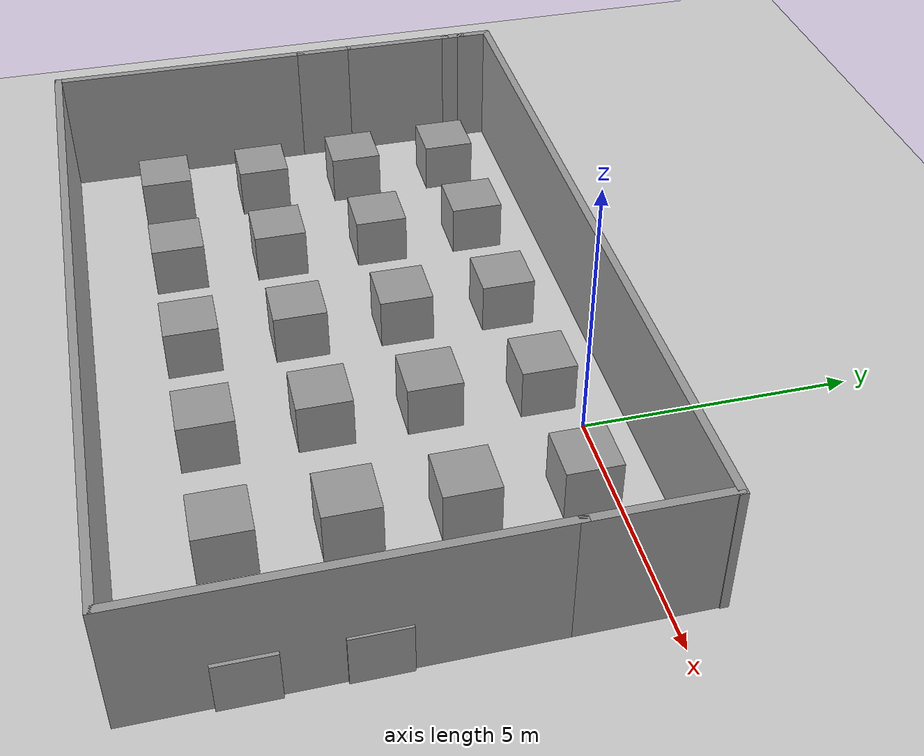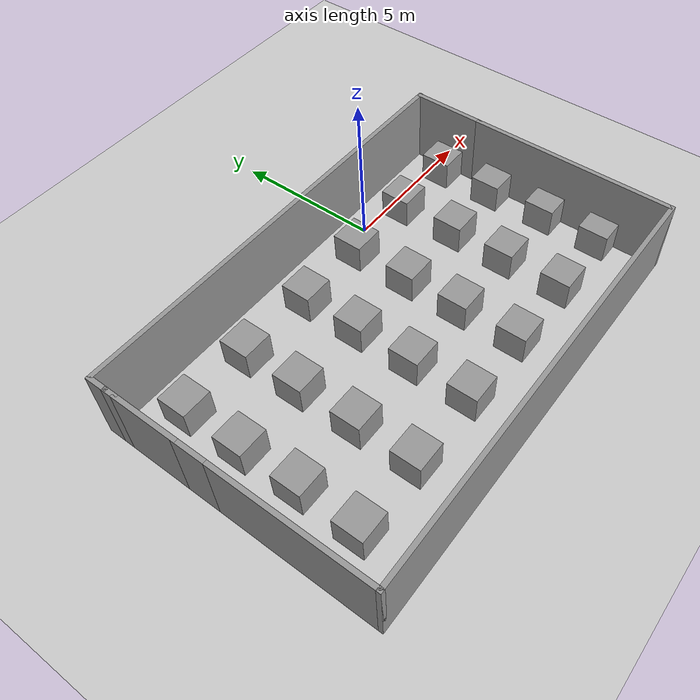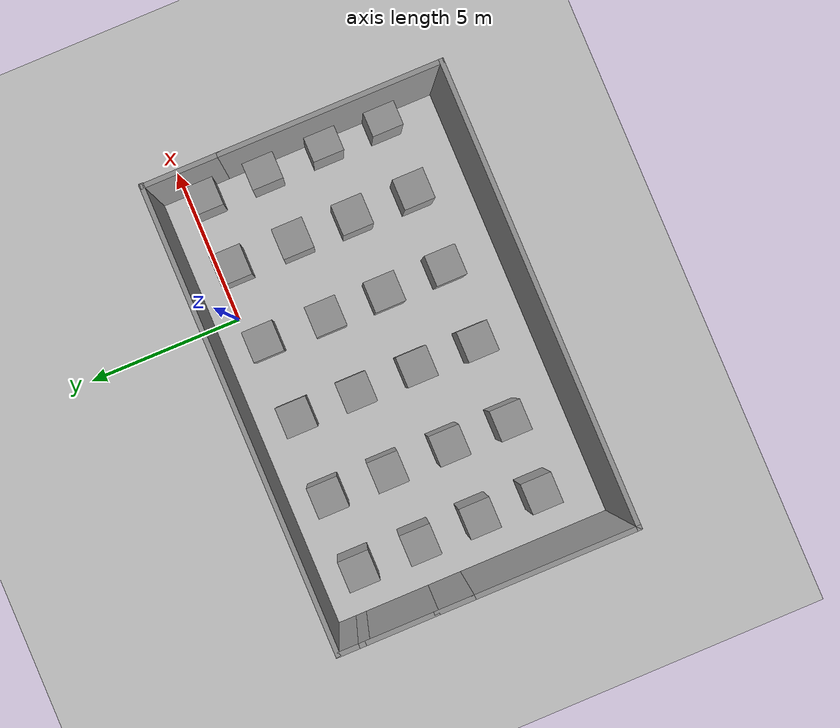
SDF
<sdf version="1.7">
 <world name="default">
  <scene><ambient>0.4 0.4 0.4 1</ambient><background>0.7 0.7 0.7 1</background><shadows>1</shadows></scene>
  <light name="sun" type="directional">
   <pose>0 0 10 0 -0 0</pose>
   <diffuse>0.8 0.8 0.8 1</diffuse>
   <specular>0.2 0.2 0.2 1</specular>
   <attenuation>
    <range>1000</range>
    <constant>0.9</constant>
    <linear>0.01</linear>
    <quadratic>0.001</quadratic>
   </attenuation>
   <direction>-0.5 0.1 -0.9</direction>
   <spot><inner_angle>0</inner_angle><outer_angle>0</outer_angle><falloff>0</falloff></spot>
  </light>
  <model name="ground_plane">
   <static>1</static>
   <link name="link">
    <collision name="collision">
     <geometry><plane><normal>0 0 1</normal><size>100 100</size></plane></geometry>
     <surface><friction><ode><mu>100</mu><mu2>50</mu2></ode></friction></surface>
    </collision>
    <visual name="visual">
     <cast_shadows>0</cast_shadows>
     <geometry><plane><normal>0 0 1</normal><size>100 100</size></plane></geometry>
     <material>
      <script><uri>file://media/materials/scripts/gazebo.material</uri><name>Gazebo/Grey</name></script>
     </material>
    </visual>
   </link>
  </model>
  <physics type="ode">
   <real_time_update_rate>0</real_time_update_rate>
   <max_step_size>0.001</max_step_size>
   <real_time_factor>1</real_time_factor>
   <ode>
    <solver>
     <type>quick</type>
     <iters>150</iters>
     <precon_iters>0</precon_iters>
     <sor>1.4</sor>
     <use_dynamic_moi_rescaling>1</use_dynamic_moi_rescaling>
    </solver>
    <constraints>
     <cfm>1e-05</cfm>
     <erp>0.2</erp>
     <contact_max_correcting_vel>2000</contact_max_correcting_vel>
     <contact_surface_layer>0.01</contact_surface_layer>
    </constraints>
   </ode>
  </physics>
  <gravity>0 0 -9.8</gravity>
  <magnetic_field>6e-06 2.3e-05 -4.2e-05</magnetic_field>
  <atmosphere type="adiabatic"/>
  <spherical_coordinates>
   <surface_model>EARTH_WGS84</surface_model>
   <latitude_deg>0</latitude_deg>
   <longitude_deg>0</longitude_deg>
   <elevation>0</elevation>
   <heading_deg>0</heading_deg>
  </spherical_coordinates>
  <model name="half_square">
   <pose>-2.87363 -3.76482 0 0 -0 0</pose>
   <link name="Wall_0">
    <collision name="Wall_0_Collision">
     <geometry><box><size>14.5 0.15 2.5</size></box></geometry>
     <pose>0 0 1.25 0 -0 0</pose>
    </collision>
    <visual name="Wall_0_Visual">
     <pose>0 0 1.25 0 -0 0</pose>
     <geometry><box><size>14.5 0.15 2.5</size></box></geometry>
     <material>
      <script><uri>file://media/materials/scripts/gazebo.material</uri><name>Gazebo/Grey</name></script>
      <ambient>1 1 1 1</ambient>
     </material>
     <meta><layer>0</layer></meta>
    </visual>
    <pose>-0.010056 -4.61503 0 0 -0 0</pose>
   </link>
   <link name="Wall_11">
    <collision name="Wall_11_Collision">
     <geometry><box><size>2.5 0.15 2.5</size></box></geometry>
     <pose>0 0 1.25 0 -0 0</pose>
    </collision>
    <visual name="Wall_11_Visual">
     <pose>0 0 1.25 0 -0 0</pose>
     <geometry><box><size>2.5 0.15 2.5</size></box></geometry>
     <material>
      <script><uri>file://media/materials/scripts/gazebo.material</uri><name>Gazebo/Grey</name></script>
      <ambient>1 1 1 1</ambient>
     </material>
     <meta><layer>0</layer></meta>
    </visual>
    <pose>7.16494 3.40997 0 0 -0 1.5708</pose>
   </link>
   <link name="Wall_13">
    <collision name="Wall_13_Collision">
     <geometry><box><size>0.730235 0.15 2.5</size></box></geometry>
     <pose>0 0 1.25 0 -0 0</pose>
    </collision>
    <visual name="Wall_13_Visual">
     <pose>0 0 1.25 0 -0 0</pose>
     <geometry><box><size>0.730235 0.15 2.5</size></box></geometry>
     <material>
      <script><uri>file://media/materials/scripts/gazebo.material</uri><name>Gazebo/Grey</name></script>
      <ambient>1 1 1 1</ambient>
     </material>
     <meta><layer>0</layer></meta>
    </visual>
    <pose>-7.18506 4.32491 0 0 -0 1.5708</pose>
   </link>
   <link name="Wall_14">
    <collision name="Wall_14_Collision">
     <geometry><box><size>14.5 0.15 2.5</size></box></geometry>
     <pose>0 0 1.25 0 -0 0</pose>
    </collision>
    <visual name="Wall_14_Visual">
     <pose>0 0 1.25 0 -0 0</pose>
     <geometry><box><size>14.5 0.15 2.5</size></box></geometry>
     <material>
      <script><uri>file://media/materials/scripts/gazebo.material</uri><name>Gazebo/Grey</name></script>
      <ambient>1 1 1 1</ambient>
     </material>
     <meta><layer>0</layer></meta>
    </visual>
    <pose>0.010057 4.61486 0 0 -0 0</pose>
   </link>
   <link name="Wall_2">
    <collision name="Wall_2_Collision">
     <geometry><box><size>5.25 0.15 2.5</size></box></geometry>
     <pose>0 0 1.25 0 -0 0</pose>
    </collision>
    <visual name="Wall_2_Visual">
     <pose>0 0 1.25 0 -0 0</pose>
     <geometry><box><size>5.25 0.15 2.5</size></box></geometry>
     <material>
      <script><uri>file://media/materials/scripts/gazebo.material</uri><name>Gazebo/Grey</name></script>
      <ambient>1 1 1 1</ambient>
     </material>
     <meta><layer>0</layer></meta>
    </visual>
    <pose>-7.18506 -2.06503 0 0 -0 1.5708</pose>
   </link>
   <link name="Wall_4">
    <collision name="Wall_4_Collision">
     <geometry><box><size>7 0.15 2.5</size></box></geometry>
     <pose>0 0 1.25 0 -0 0</pose>
    </collision>
    <visual name="Wall_4_Visual">
     <pose>0 0 1.25 0 -0 0</pose>
     <geometry><box><size>7 0.15 2.5</size></box></geometry>
     <material>
      <script><uri>file://media/materials/scripts/gazebo.material</uri><name>Gazebo/Grey</name></script>
      <ambient>1 1 1 1</ambient>
     </material>
     <meta><layer>0</layer></meta>
    </visual>
    <pose>7.16494 -1.19003 0 0 -0 1.5708</pose>
   </link>
   <link name="Wall_6">
    <collision name="Wall_6_Collision">
     <geometry><box><size>1.25 0.15 2.5</size></box></geometry>
     <pose>0 0 1.25 0 -0 0</pose>
    </collision>
    <visual name="Wall_6_Visual">
     <pose>0 0 1.25 0 -0 0</pose>
     <geometry><box><size>1.25 0.15 2.5</size></box></geometry>
     <material>
      <script><uri>file://media/materials/scripts/gazebo.material</uri><name>Gazebo/Grey</name></script>
      <ambient>1 1 1 1</ambient>
     </material>
     <meta><layer>0</layer></meta>
    </visual>
    <pose>-7.18506 1.03497 0 0 -0 1.5708</pose>
   </link>
   <link name="Wall_8">
    <collision name="Wall_8_Collision">
     <geometry><box><size>2.25 0.15 2.5</size></box></geometry>
     <pose>0 0 1.25 0 -0 0</pose>
    </collision>
    <visual name="Wall_8_Visual">
     <pose>0 0 1.25 0 -0 0</pose>
     <geometry><box><size>2.25 0.15 2.5</size></box></geometry>
     <material>
      <script><uri>file://media/materials/scripts/gazebo.material</uri><name>Gazebo/Grey</name></script>
      <ambient>1 1 1 1</ambient>
     </material>
     <meta><layer>0</layer></meta>
    </visual>
    <pose>-7.18506 2.63497 0 0 -0 1.5708</pose>
   </link>
   <link name="Wall_9">
    <collision name="Wall_9_Collision">
     <geometry><box><size>0.5 0.15 2.5</size></box></geometry>
     <pose>0 0 1.25 0 -0 0</pose>
    </collision>
    <visual name="Wall_9_Visual">
     <pose>0 0 1.25 0 -0 0</pose>
     <geometry><box><size>0.5 0.15 2.5</size></box></geometry>
     <material>
      <script><uri>file://media/materials/scripts/gazebo.material</uri><name>Gazebo/Grey</name></script>
      <ambient>1 1 1 1</ambient>
     </material>
     <meta><layer>0</layer></meta>
    </visual>
    <pose>-7.18506 3.85997 0 0 -0 1.5708</pose>
   </link>
   <static>1</static>
  </model>
  <plugin name="gazebo_occupancy_map" filename="libgazebo_2Dmap_plugin.so">
   <map_resolution>0.02</map_resolution>
   <map_height>0.7</map_height>
   <map_size_x>20</map_size_x>
   <map_size_y>20</map_size_y>
   <init_robot_x>0</init_robot_x>
   <init_robot_y>0</init_robot_y>
  </plugin>
  <model name="just_blocks">
   <link name="link_0">
    <inertial>
     <mass>1</mass>
     <inertia>
      <ixx>0.166667</ixx>
      <ixy>0</ixy>
      <ixz>0</ixz>
      <iyy>0.166667</iyy>
      <iyz>0</iyz>
      <izz>0.166667</izz>
     </inertia>
    </inertial>
    <pose>-6.21772 3.00533 0 0 -0 0</pose>
    <visual name="visual">
     <geometry><box><size>1 1 1</size></box></geometry>
     <material>
      <lighting>1</lighting>
      <script><uri>file://media/materials/scripts/gazebo.material</uri><name>Gazebo/Grey</name></script>
      <shader type="pixel"/>
     </material>
    </visual>
    <collision name="collision">
     <geometry><box><size>1 1 1</size></box></geometry>
     <surface>
      <friction>
       <ode><mu>1</mu><mu2>1</mu2><fdir1>0 0 0</fdir1><slip1>0</slip1><slip2>0</slip2></ode>
       <torsional>
        <coefficient>1</coefficient>
        <patch_radius>0</patch_radius>
        <surface_radius>0</surface_radius>
        <use_patch_radius>1</use_patch_radius>
        <ode><slip>0</slip></ode>
       </torsional>
      </friction>
      <bounce><restitution_coefficient>0</restitution_coefficient><threshold>1e+06</threshold></bounce>
      <contact>
       <collide_without_contact>0</collide_without_contact>
       <collide_without_contact_bitmask>1</collide_without_contact_bitmask>
       <collide_bitmask>1</collide_bitmask>
       <ode>
        <soft_cfm>0</soft_cfm>
        <soft_erp>0.2</soft_erp>
        <kp>1e+13</kp>
        <kd>1</kd>
        <max_vel>0.01</max_vel>
        <min_depth>0</min_depth>
       </ode>
       <bullet>
        <split_impulse>1</split_impulse>
        <split_impulse_penetration_threshold>-0.01</split_impulse_penetration_threshold>
        <soft_cfm>0</soft_cfm>
        <soft_erp>0.2</soft_erp>
        <kp>1e+13</kp>
        <kd>1</kd>
       </bullet>
      </contact>
     </surface>
    </collision>
   </link>
   <link name="link_1">
    <inertial>
     <mass>1</mass>
     <inertia>
      <ixx>0.166667</ixx>
      <ixy>0</ixy>
      <ixz>0</ixz>
      <iyy>0.166667</iyy>
      <iyz>0</iyz>
      <izz>0.166667</izz>
     </inertia>
    </inertial>
    <pose>-1.21797 2.95032 0 0 -0 0</pose>
    <visual name="visual">
     <geometry><box><size>1 1 1</size></box></geometry>
     <material>
      <lighting>1</lighting>
      <script><uri>file://media/materials/scripts/gazebo.material</uri><name>Gazebo/Grey</name></script>
      <shader type="pixel"/>
     </material>
    </visual>
    <collision name="collision">
     <geometry><box><size>1 1 1</size></box></geometry>
     <surface>
      <friction>
       <ode><mu>1</mu><mu2>1</mu2><fdir1>0 0 0</fdir1><slip1>0</slip1><slip2>0</slip2></ode>
       <torsional>
        <coefficient>1</coefficient>
        <patch_radius>0</patch_radius>
        <surface_radius>0</surface_radius>
        <use_patch_radius>1</use_patch_radius>
        <ode><slip>0</slip></ode>
       </torsional>
      </friction>
      <bounce><restitution_coefficient>0</restitution_coefficient><threshold>1e+06</threshold></bounce>
      <contact>
       <collide_without_contact>0</collide_without_contact>
       <collide_without_contact_bitmask>1</collide_without_contact_bitmask>
       <collide_bitmask>1</collide_bitmask>
       <ode>
        <soft_cfm>0</soft_cfm>
        <soft_erp>0.2</soft_erp>
        <kp>1e+13</kp>
        <kd>1</kd>
        <max_vel>0.01</max_vel>
        <min_depth>0</min_depth>
       </ode>
       <bullet>
        <split_impulse>1</split_impulse>
        <split_impulse_penetration_threshold>-0.01</split_impulse_penetration_threshold>
        <soft_cfm>0</soft_cfm>
        <soft_erp>0.2</soft_erp>
        <kp>1e+13</kp>
        <kd>1</kd>
       </bullet>
      </contact>
     </surface>
    </collision>
   </link>
   <link name="link_10">
    <inertial>
     <mass>1</mass>
     <inertia>
      <ixx>0.166667</ixx>
      <ixy>0</ixy>
      <ixz>0</ixz>
      <iyy>0.166667</iyy>
      <iyz>0</iyz>
      <izz>0.166667</izz>
     </inertia>
    </inertial>
    <pose>1.25589 0.953652 0 0 -0 0</pose>
    <visual name="visual">
     <geometry><box><size>1 1 1</size></box></geometry>
     <material>
      <lighting>1</lighting>
      <script><uri>file://media/materials/scripts/gazebo.material</uri><name>Gazebo/Grey</name></script>
      <shader type="pixel"/>
     </material>
    </visual>
    <collision name="collision">
     <geometry><box><size>1 1 1</size></box></geometry>
     <surface>
      <friction>
       <ode><mu>1</mu><mu2>1</mu2><fdir1>0 0 0</fdir1><slip1>0</slip1><slip2>0</slip2></ode>
       <torsional>
        <coefficient>1</coefficient>
        <patch_radius>0</patch_radius>
        <surface_radius>0</surface_radius>
        <use_patch_radius>1</use_patch_radius>
        <ode><slip>0</slip></ode>
       </torsional>
      </friction>
      <bounce><restitution_coefficient>0</restitution_coefficient><threshold>1e+06</threshold></bounce>
      <contact>
       <collide_without_contact>0</collide_without_contact>
       <collide_without_contact_bitmask>1</collide_without_contact_bitmask>
       <collide_bitmask>1</collide_bitmask>
       <ode>
        <soft_cfm>0</soft_cfm>
        <soft_erp>0.2</soft_erp>
        <kp>1e+13</kp>
        <kd>1</kd>
        <max_vel>0.01</max_vel>
        <min_depth>0</min_depth>
       </ode>
       <bullet>
        <split_impulse>1</split_impulse>
        <split_impulse_penetration_threshold>-0.01</split_impulse_penetration_threshold>
        <soft_cfm>0</soft_cfm>
        <soft_erp>0.2</soft_erp>
        <kp>1e+13</kp>
        <kd>1</kd>
       </bullet>
      </contact>
     </surface>
    </collision>
   </link>
   <link name="link_11">
    <inertial>
     <mass>1</mass>
     <inertia>
      <ixx>0.166667</ixx>
      <ixy>0</ixy>
      <ixz>0</ixz>
      <iyy>0.166667</iyy>
      <iyz>0</iyz>
      <izz>0.166667</izz>
     </inertia>
    </inertial>
    <pose>-1.21484 0.988846 0 0 -0 0</pose>
    <visual name="visual">
     <geometry><box><size>1 1 1</size></box></geometry>
     <material>
      <lighting>1</lighting>
      <script><uri>file://media/materials/scripts/gazebo.material</uri><name>Gazebo/Grey</name></script>
      <shader type="pixel"/>
     </material>
    </visual>
    <collision name="collision">
     <geometry><box><size>1 1 1</size></box></geometry>
     <surface>
      <friction>
       <ode><mu>1</mu><mu2>1</mu2><fdir1>0 0 0</fdir1><slip1>0</slip1><slip2>0</slip2></ode>
       <torsional>
        <coefficient>1</coefficient>
        <patch_radius>0</patch_radius>
        <surface_radius>0</surface_radius>
        <use_patch_radius>1</use_patch_radius>
        <ode><slip>0</slip></ode>
       </torsional>
      </friction>
      <bounce><restitution_coefficient>0</restitution_coefficient><threshold>1e+06</threshold></bounce>
      <contact>
       <collide_without_contact>0</collide_without_contact>
       <collide_without_contact_bitmask>1</collide_without_contact_bitmask>
       <collide_bitmask>1</collide_bitmask>
       <ode>
        <soft_cfm>0</soft_cfm>
        <soft_erp>0.2</soft_erp>
        <kp>1e+13</kp>
        <kd>1</kd>
        <max_vel>0.01</max_vel>
        <min_depth>0</min_depth>
       </ode>
       <bullet>
        <split_impulse>1</split_impulse>
        <split_impulse_penetration_threshold>-0.01</split_impulse_penetration_threshold>
        <soft_cfm>0</soft_cfm>
        <soft_erp>0.2</soft_erp>
        <kp>1e+13</kp>
        <kd>1</kd>
       </bullet>
      </contact>
     </surface>
    </collision>
   </link>
   <link name="link_12">
    <inertial>
     <mass>1</mass>
     <inertia>
      <ixx>0.166667</ixx>
      <ixy>0</ixy>
      <ixz>0</ixz>
      <iyy>0.166667</iyy>
      <iyz>0</iyz>
      <izz>0.166667</izz>
     </inertia>
    </inertial>
    <pose>-3.80853 1.03912 0 0 -0 0</pose>
    <visual name="visual">
     <geometry><box><size>1 1 1</size></box></geometry>
     <material>
      <lighting>1</lighting>
      <script><uri>file://media/materials/scripts/gazebo.material</uri><name>Gazebo/Grey</name></script>
      <shader type="pixel"/>
     </material>
    </visual>
    <collision name="collision">
     <geometry><box><size>1 1 1</size></box></geometry>
     <surface>
      <friction>
       <ode><mu>1</mu><mu2>1</mu2><fdir1>0 0 0</fdir1><slip1>0</slip1><slip2>0</slip2></ode>
       <torsional>
        <coefficient>1</coefficient>
        <patch_radius>0</patch_radius>
        <surface_radius>0</surface_radius>
        <use_patch_radius>1</use_patch_radius>
        <ode><slip>0</slip></ode>
       </torsional>
      </friction>
      <bounce><restitution_coefficient>0</restitution_coefficient><threshold>1e+06</threshold></bounce>
      <contact>
       <collide_without_contact>0</collide_without_contact>
       <collide_without_contact_bitmask>1</collide_without_contact_bitmask>
       <collide_bitmask>1</collide_bitmask>
       <ode>
        <soft_cfm>0</soft_cfm>
        <soft_erp>0.2</soft_erp>
        <kp>1e+13</kp>
        <kd>1</kd>
        <max_vel>0.01</max_vel>
        <min_depth>0</min_depth>
       </ode>
       <bullet>
        <split_impulse>1</split_impulse>
        <split_impulse_penetration_threshold>-0.01</split_impulse_penetration_threshold>
        <soft_cfm>0</soft_cfm>
        <soft_erp>0.2</soft_erp>
        <kp>1e+13</kp>
        <kd>1</kd>
       </bullet>
      </contact>
     </surface>
    </collision>
   </link>
   <link name="link_13">
    <inertial>
     <mass>1</mass>
     <inertia>
      <ixx>0.166667</ixx>
      <ixy>0</ixy>
      <ixz>0</ixz>
      <iyy>0.166667</iyy>
      <iyz>0</iyz>
      <izz>0.166667</izz>
     </inertia>
    </inertial>
    <pose>-6.20925 0.984724 0 0 -0 0</pose>
    <visual name="visual">
     <geometry><box><size>1 1 1</size></box></geometry>
     <material>
      <lighting>1</lighting>
      <script><uri>file://media/materials/scripts/gazebo.material</uri><name>Gazebo/Grey</name></script>
      <shader type="pixel"/>
     </material>
    </visual>
    <collision name="collision">
     <geometry><box><size>1 1 1</size></box></geometry>
     <surface>
      <friction>
       <ode><mu>1</mu><mu2>1</mu2><fdir1>0 0 0</fdir1><slip1>0</slip1><slip2>0</slip2></ode>
       <torsional>
        <coefficient>1</coefficient>
        <patch_radius>0</patch_radius>
        <surface_radius>0</surface_radius>
        <use_patch_radius>1</use_patch_radius>
        <ode><slip>0</slip></ode>
       </torsional>
      </friction>
      <bounce><restitution_coefficient>0</restitution_coefficient><threshold>1e+06</threshold></bounce>
      <contact>
       <collide_without_contact>0</collide_without_contact>
       <collide_without_contact_bitmask>1</collide_without_contact_bitmask>
       <collide_bitmask>1</collide_bitmask>
       <ode>
        <soft_cfm>0</soft_cfm>
        <soft_erp>0.2</soft_erp>
        <kp>1e+13</kp>
        <kd>1</kd>
        <max_vel>0.01</max_vel>
        <min_depth>0</min_depth>
       </ode>
       <bullet>
        <split_impulse>1</split_impulse>
        <split_impulse_penetration_threshold>-0.01</split_impulse_penetration_threshold>
        <soft_cfm>0</soft_cfm>
        <soft_erp>0.2</soft_erp>
        <kp>1e+13</kp>
        <kd>1</kd>
       </bullet>
      </contact>
     </surface>
    </collision>
   </link>
   <link name="link_14">
    <inertial>
     <mass>1</mass>
     <inertia>
      <ixx>0.166667</ixx>
      <ixy>0</ixy>
      <ixz>0</ixz>
      <iyy>0.166667</iyy>
      <iyz>0</iyz>
      <izz>0.166667</izz>
     </inertia>
    </inertial>
    <pose>-3.79523 -0.986911 0 0 -0 0</pose>
    <visual name="visual">
     <geometry><box><size>1 1 1</size></box></geometry>
     <material>
      <lighting>1</lighting>
      <script><uri>file://media/materials/scripts/gazebo.material</uri><name>Gazebo/Grey</name></script>
      <shader type="pixel"/>
     </material>
    </visual>
    <collision name="collision">
     <geometry><box><size>1 1 1</size></box></geometry>
     <surface>
      <friction>
       <ode><mu>1</mu><mu2>1</mu2><fdir1>0 0 0</fdir1><slip1>0</slip1><slip2>0</slip2></ode>
       <torsional>
        <coefficient>1</coefficient>
        <patch_radius>0</patch_radius>
        <surface_radius>0</surface_radius>
        <use_patch_radius>1</use_patch_radius>
        <ode><slip>0</slip></ode>
       </torsional>
      </friction>
      <bounce><restitution_coefficient>0</restitution_coefficient><threshold>1e+06</threshold></bounce>
      <contact>
       <collide_without_contact>0</collide_without_contact>
       <collide_without_contact_bitmask>1</collide_without_contact_bitmask>
       <collide_bitmask>1</collide_bitmask>
       <ode>
        <soft_cfm>0</soft_cfm>
        <soft_erp>0.2</soft_erp>
        <kp>1e+13</kp>
        <kd>1</kd>
        <max_vel>0.01</max_vel>
        <min_depth>0</min_depth>
       </ode>
       <bullet>
        <split_impulse>1</split_impulse>
        <split_impulse_penetration_threshold>-0.01</split_impulse_penetration_threshold>
        <soft_cfm>0</soft_cfm>
        <soft_erp>0.2</soft_erp>
        <kp>1e+13</kp>
        <kd>1</kd>
       </bullet>
      </contact>
     </surface>
    </collision>
   </link>
   <link name="link_15">
    <inertial>
     <mass>1</mass>
     <inertia>
      <ixx>0.166667</ixx>
      <ixy>0</ixy>
      <ixz>0</ixz>
      <iyy>0.166667</iyy>
      <iyz>0</iyz>
      <izz>0.166667</izz>
     </inertia>
    </inertial>
    <pose>-1.21123 -1.0039 0 0 -0 0</pose>
    <visual name="visual">
     <geometry><box><size>1 1 1</size></box></geometry>
     <material>
      <lighting>1</lighting>
      <script><uri>file://media/materials/scripts/gazebo.material</uri><name>Gazebo/Grey</name></script>
      <shader type="pixel"/>
     </material>
    </visual>
    <collision name="collision">
     <geometry><box><size>1 1 1</size></box></geometry>
     <surface>
      <friction>
       <ode><mu>1</mu><mu2>1</mu2><fdir1>0 0 0</fdir1><slip1>0</slip1><slip2>0</slip2></ode>
       <torsional>
        <coefficient>1</coefficient>
        <patch_radius>0</patch_radius>
        <surface_radius>0</surface_radius>
        <use_patch_radius>1</use_patch_radius>
        <ode><slip>0</slip></ode>
       </torsional>
      </friction>
      <bounce><restitution_coefficient>0</restitution_coefficient><threshold>1e+06</threshold></bounce>
      <contact>
       <collide_without_contact>0</collide_without_contact>
       <collide_without_contact_bitmask>1</collide_without_contact_bitmask>
       <collide_bitmask>1</collide_bitmask>
       <ode>
        <soft_cfm>0</soft_cfm>
        <soft_erp>0.2</soft_erp>
        <kp>1e+13</kp>
        <kd>1</kd>
        <max_vel>0.01</max_vel>
        <min_depth>0</min_depth>
       </ode>
       <bullet>
        <split_impulse>1</split_impulse>
        <split_impulse_penetration_threshold>-0.01</split_impulse_penetration_threshold>
        <soft_cfm>0</soft_cfm>
        <soft_erp>0.2</soft_erp>
        <kp>1e+13</kp>
        <kd>1</kd>
       </bullet>
      </contact>
     </surface>
    </collision>
   </link>
   <link name="link_16">
    <inertial>
     <mass>1</mass>
     <inertia>
      <ixx>0.166667</ixx>
      <ixy>0</ixy>
      <ixz>0</ixz>
      <iyy>0.166667</iyy>
      <iyz>0</iyz>
      <izz>0.166667</izz>
     </inertia>
    </inertial>
    <pose>1.25383 -0.979568 0 0 -0 0</pose>
    <visual name="visual">
     <geometry><box><size>1 1 1</size></box></geometry>
     <material>
      <lighting>1</lighting>
      <script><uri>file://media/materials/scripts/gazebo.material</uri><name>Gazebo/Grey</name></script>
      <shader type="pixel"/>
     </material>
    </visual>
    <collision name="collision">
     <geometry><box><size>1 1 1</size></box></geometry>
     <surface>
      <friction>
       <ode><mu>1</mu><mu2>1</mu2><fdir1>0 0 0</fdir1><slip1>0</slip1><slip2>0</slip2></ode>
       <torsional>
        <coefficient>1</coefficient>
        <patch_radius>0</patch_radius>
        <surface_radius>0</surface_radius>
        <use_patch_radius>1</use_patch_radius>
        <ode><slip>0</slip></ode>
       </torsional>
      </friction>
      <bounce><restitution_coefficient>0</restitution_coefficient><threshold>1e+06</threshold></bounce>
      <contact>
       <collide_without_contact>0</collide_without_contact>
       <collide_without_contact_bitmask>1</collide_without_contact_bitmask>
       <collide_bitmask>1</collide_bitmask>
       <ode>
        <soft_cfm>0</soft_cfm>
        <soft_erp>0.2</soft_erp>
        <kp>1e+13</kp>
        <kd>1</kd>
        <max_vel>0.01</max_vel>
        <min_depth>0</min_depth>
       </ode>
       <bullet>
        <split_impulse>1</split_impulse>
        <split_impulse_penetration_threshold>-0.01</split_impulse_penetration_threshold>
        <soft_cfm>0</soft_cfm>
        <soft_erp>0.2</soft_erp>
        <kp>1e+13</kp>
        <kd>1</kd>
       </bullet>
      </contact>
     </surface>
    </collision>
   </link>
   <link name="link_17">
    <inertial>
     <mass>1</mass>
     <inertia>
      <ixx>0.166667</ixx>
      <ixy>0</ixy>
      <ixz>0</ixz>
      <iyy>0.166667</iyy>
      <iyz>0</iyz>
      <izz>0.166667</izz>
     </inertia>
    </inertial>
    <pose>3.78789 -0.982702 0 0 -0 0</pose>
    <visual name="visual">
     <geometry><box><size>1 1 1</size></box></geometry>
     <material>
      <lighting>1</lighting>
      <script><uri>file://media/materials/scripts/gazebo.material</uri><name>Gazebo/Grey</name></script>
      <shader type="pixel"/>
     </material>
    </visual>
    <collision name="collision">
     <geometry><box><size>1 1 1</size></box></geometry>
     <surface>
      <friction>
       <ode><mu>1</mu><mu2>1</mu2><fdir1>0 0 0</fdir1><slip1>0</slip1><slip2>0</slip2></ode>
       <torsional>
        <coefficient>1</coefficient>
        <patch_radius>0</patch_radius>
        <surface_radius>0</surface_radius>
        <use_patch_radius>1</use_patch_radius>
        <ode><slip>0</slip></ode>
       </torsional>
      </friction>
      <bounce><restitution_coefficient>0</restitution_coefficient><threshold>1e+06</threshold></bounce>
      <contact>
       <collide_without_contact>0</collide_without_contact>
       <collide_without_contact_bitmask>1</collide_without_contact_bitmask>
       <collide_bitmask>1</collide_bitmask>
       <ode>
        <soft_cfm>0</soft_cfm>
        <soft_erp>0.2</soft_erp>
        <kp>1e+13</kp>
        <kd>1</kd>
        <max_vel>0.01</max_vel>
        <min_depth>0</min_depth>
       </ode>
       <bullet>
        <split_impulse>1</split_impulse>
        <split_impulse_penetration_threshold>-0.01</split_impulse_penetration_threshold>
        <soft_cfm>0</soft_cfm>
        <soft_erp>0.2</soft_erp>
        <kp>1e+13</kp>
        <kd>1</kd>
       </bullet>
      </contact>
     </surface>
    </collision>
   </link>
   <link name="link_18">
    <inertial>
     <mass>1</mass>
     <inertia>
      <ixx>0.166667</ixx>
      <ixy>0</ixy>
      <ixz>0</ixz>
      <iyy>0.166667</iyy>
      <iyz>0</iyz>
      <izz>0.166667</izz>
     </inertia>
    </inertial>
    <pose>6.19431 -1.01637 0 0 -0 0</pose>
    <visual name="visual">
     <geometry><box><size>1 1 1</size></box></geometry>
     <material>
      <lighting>1</lighting>
      <script><uri>file://media/materials/scripts/gazebo.material</uri><name>Gazebo/Grey</name></script>
      <shader type="pixel"/>
     </material>
    </visual>
    <collision name="collision">
     <geometry><box><size>1 1 1</size></box></geometry>
     <surface>
      <friction>
       <ode><mu>1</mu><mu2>1</mu2><fdir1>0 0 0</fdir1><slip1>0</slip1><slip2>0</slip2></ode>
       <torsional>
        <coefficient>1</coefficient>
        <patch_radius>0</patch_radius>
        <surface_radius>0</surface_radius>
        <use_patch_radius>1</use_patch_radius>
        <ode><slip>0</slip></ode>
       </torsional>
      </friction>
      <bounce><restitution_coefficient>0</restitution_coefficient><threshold>1e+06</threshold></bounce>
      <contact>
       <collide_without_contact>0</collide_without_contact>
       <collide_without_contact_bitmask>1</collide_without_contact_bitmask>
       <collide_bitmask>1</collide_bitmask>
       <ode>
        <soft_cfm>0</soft_cfm>
        <soft_erp>0.2</soft_erp>
        <kp>1e+13</kp>
        <kd>1</kd>
        <max_vel>0.01</max_vel>
        <min_depth>0</min_depth>
       </ode>
       <bullet>
        <split_impulse>1</split_impulse>
        <split_impulse_penetration_threshold>-0.01</split_impulse_penetration_threshold>
        <soft_cfm>0</soft_cfm>
        <soft_erp>0.2</soft_erp>
        <kp>1e+13</kp>
        <kd>1</kd>
       </bullet>
      </contact>
     </surface>
    </collision>
   </link>
   <link name="link_19">
    <inertial>
     <mass>1</mass>
     <inertia>
      <ixx>0.166667</ixx>
      <ixy>0</ixy>
      <ixz>0</ixz>
      <iyy>0.166667</iyy>
      <iyz>0</iyz>
      <izz>0.166667</izz>
     </inertia>
    </inertial>
    <pose>6.21195 -2.97507 0 0 -0 0</pose>
    <visual name="visual">
     <geometry><box><size>1 1 1</size></box></geometry>
     <material>
      <lighting>1</lighting>
      <script><uri>file://media/materials/scripts/gazebo.material</uri><name>Gazebo/Grey</name></script>
      <shader type="pixel"/>
     </material>
    </visual>
    <collision name="collision">
     <geometry><box><size>1 1 1</size></box></geometry>
     <surface>
      <friction>
       <ode><mu>1</mu><mu2>1</mu2><fdir1>0 0 0</fdir1><slip1>0</slip1><slip2>0</slip2></ode>
       <torsional>
        <coefficient>1</coefficient>
        <patch_radius>0</patch_radius>
        <surface_radius>0</surface_radius>
        <use_patch_radius>1</use_patch_radius>
        <ode><slip>0</slip></ode>
       </torsional>
      </friction>
      <bounce><restitution_coefficient>0</restitution_coefficient><threshold>1e+06</threshold></bounce>
      <contact>
       <collide_without_contact>0</collide_without_contact>
       <collide_without_contact_bitmask>1</collide_without_contact_bitmask>
       <collide_bitmask>1</collide_bitmask>
       <ode>
        <soft_cfm>0</soft_cfm>
        <soft_erp>0.2</soft_erp>
        <kp>1e+13</kp>
        <kd>1</kd>
        <max_vel>0.01</max_vel>
        <min_depth>0</min_depth>
       </ode>
       <bullet>
        <split_impulse>1</split_impulse>
        <split_impulse_penetration_threshold>-0.01</split_impulse_penetration_threshold>
        <soft_cfm>0</soft_cfm>
        <soft_erp>0.2</soft_erp>
        <kp>1e+13</kp>
        <kd>1</kd>
       </bullet>
      </contact>
     </surface>
    </collision>
   </link>
   <link name="link_2">
    <inertial>
     <mass>1</mass>
     <inertia>
      <ixx>0.166667</ixx>
      <ixy>0</ixy>
      <ixz>0</ixz>
      <iyy>0.166667</iyy>
      <iyz>0</iyz>
      <izz>0.166667</izz>
     </inertia>
    </inertial>
    <pose>-3.81458 3.01082 0 0 -0 0</pose>
    <visual name="visual">
     <geometry><box><size>1 1 1</size></box></geometry>
     <material>
      <lighting>1</lighting>
      <script><uri>file://media/materials/scripts/gazebo.material</uri><name>Gazebo/Grey</name></script>
      <shader type="pixel"/>
     </material>
    </visual>
    <collision name="collision">
     <geometry><box><size>1 1 1</size></box></geometry>
     <surface>
      <friction>
       <ode><mu>1</mu><mu2>1</mu2><fdir1>0 0 0</fdir1><slip1>0</slip1><slip2>0</slip2></ode>
       <torsional>
        <coefficient>1</coefficient>
        <patch_radius>0</patch_radius>
        <surface_radius>0</surface_radius>
        <use_patch_radius>1</use_patch_radius>
        <ode><slip>0</slip></ode>
       </torsional>
      </friction>
      <bounce><restitution_coefficient>0</restitution_coefficient><threshold>1e+06</threshold></bounce>
      <contact>
       <collide_without_contact>0</collide_without_contact>
       <collide_without_contact_bitmask>1</collide_without_contact_bitmask>
       <collide_bitmask>1</collide_bitmask>
       <ode>
        <soft_cfm>0</soft_cfm>
        <soft_erp>0.2</soft_erp>
        <kp>1e+13</kp>
        <kd>1</kd>
        <max_vel>0.01</max_vel>
        <min_depth>0</min_depth>
       </ode>
       <bullet>
        <split_impulse>1</split_impulse>
        <split_impulse_penetration_threshold>-0.01</split_impulse_penetration_threshold>
        <soft_cfm>0</soft_cfm>
        <soft_erp>0.2</soft_erp>
        <kp>1e+13</kp>
        <kd>1</kd>
       </bullet>
      </contact>
     </surface>
    </collision>
   </link>
   <link name="link_20">
    <inertial>
     <mass>1</mass>
     <inertia>
      <ixx>0.166667</ixx>
      <ixy>0</ixy>
      <ixz>0</ixz>
      <iyy>0.166667</iyy>
      <iyz>0</iyz>
      <izz>0.166667</izz>
     </inertia>
    </inertial>
    <pose>3.78265 -3.00152 0 0 -0 0</pose>
    <visual name="visual">
     <geometry><box><size>1 1 1</size></box></geometry>
     <material>
      <lighting>1</lighting>
      <script><uri>file://media/materials/scripts/gazebo.material</uri><name>Gazebo/Grey</name></script>
      <shader type="pixel"/>
     </material>
    </visual>
    <collision name="collision">
     <geometry><box><size>1 1 1</size></box></geometry>
     <surface>
      <friction>
       <ode><mu>1</mu><mu2>1</mu2><fdir1>0 0 0</fdir1><slip1>0</slip1><slip2>0</slip2></ode>
       <torsional>
        <coefficient>1</coefficient>
        <patch_radius>0</patch_radius>
        <surface_radius>0</surface_radius>
        <use_patch_radius>1</use_patch_radius>
        <ode><slip>0</slip></ode>
       </torsional>
      </friction>
      <bounce><restitution_coefficient>0</restitution_coefficient><threshold>1e+06</threshold></bounce>
      <contact>
       <collide_without_contact>0</collide_without_contact>
       <collide_without_contact_bitmask>1</collide_without_contact_bitmask>
       <collide_bitmask>1</collide_bitmask>
       <ode>
        <soft_cfm>0</soft_cfm>
        <soft_erp>0.2</soft_erp>
        <kp>1e+13</kp>
        <kd>1</kd>
        <max_vel>0.01</max_vel>
        <min_depth>0</min_depth>
       </ode>
       <bullet>
        <split_impulse>1</split_impulse>
        <split_impulse_penetration_threshold>-0.01</split_impulse_penetration_threshold>
        <soft_cfm>0</soft_cfm>
        <soft_erp>0.2</soft_erp>
        <kp>1e+13</kp>
        <kd>1</kd>
       </bullet>
      </contact>
     </surface>
    </collision>
   </link>
   <link name="link_21">
    <inertial>
     <mass>1</mass>
     <inertia>
      <ixx>0.166667</ixx>
      <ixy>0</ixy>
      <ixz>0</ixz>
      <iyy>0.166667</iyy>
      <iyz>0</iyz>
      <izz>0.166667</izz>
     </inertia>
    </inertial>
    <pose>1.2772 -2.9987 0 0 -0 0</pose>
    <visual name="visual">
     <geometry><box><size>1 1 1</size></box></geometry>
     <material>
      <lighting>1</lighting>
      <script><uri>file://media/materials/scripts/gazebo.material</uri><name>Gazebo/Grey</name></script>
      <shader type="pixel"/>
     </material>
    </visual>
    <collision name="collision">
     <geometry><box><size>1 1 1</size></box></geometry>
     <surface>
      <friction>
       <ode><mu>1</mu><mu2>1</mu2><fdir1>0 0 0</fdir1><slip1>0</slip1><slip2>0</slip2></ode>
       <torsional>
        <coefficient>1</coefficient>
        <patch_radius>0</patch_radius>
        <surface_radius>0</surface_radius>
        <use_patch_radius>1</use_patch_radius>
        <ode><slip>0</slip></ode>
       </torsional>
      </friction>
      <bounce><restitution_coefficient>0</restitution_coefficient><threshold>1e+06</threshold></bounce>
      <contact>
       <collide_without_contact>0</collide_without_contact>
       <collide_without_contact_bitmask>1</collide_without_contact_bitmask>
       <collide_bitmask>1</collide_bitmask>
       <ode>
        <soft_cfm>0</soft_cfm>
        <soft_erp>0.2</soft_erp>
        <kp>1e+13</kp>
        <kd>1</kd>
        <max_vel>0.01</max_vel>
        <min_depth>0</min_depth>
       </ode>
       <bullet>
        <split_impulse>1</split_impulse>
        <split_impulse_penetration_threshold>-0.01</split_impulse_penetration_threshold>
        <soft_cfm>0</soft_cfm>
        <soft_erp>0.2</soft_erp>
        <kp>1e+13</kp>
        <kd>1</kd>
       </bullet>
      </contact>
     </surface>
    </collision>
   </link>
   <link name="link_22">
    <inertial>
     <mass>1</mass>
     <inertia>
      <ixx>0.166667</ixx>
      <ixy>0</ixy>
      <ixz>0</ixz>
      <iyy>0.166667</iyy>
      <iyz>0</iyz>
      <izz>0.166667</izz>
     </inertia>
    </inertial>
    <pose>-1.22351 -2.99474 0 0 -0 0</pose>
    <visual name="visual">
     <geometry><box><size>1 1 1</size></box></geometry>
     <material>
      <lighting>1</lighting>
      <script><uri>file://media/materials/scripts/gazebo.material</uri><name>Gazebo/Grey</name></script>
      <shader type="pixel"/>
     </material>
    </visual>
    <collision name="collision">
     <geometry><box><size>1 1 1</size></box></geometry>
     <surface>
      <friction>
       <ode><mu>1</mu><mu2>1</mu2><fdir1>0 0 0</fdir1><slip1>0</slip1><slip2>0</slip2></ode>
       <torsional>
        <coefficient>1</coefficient>
        <patch_radius>0</patch_radius>
        <surface_radius>0</surface_radius>
        <use_patch_radius>1</use_patch_radius>
        <ode><slip>0</slip></ode>
       </torsional>
      </friction>
      <bounce><restitution_coefficient>0</restitution_coefficient><threshold>1e+06</threshold></bounce>
      <contact>
       <collide_without_contact>0</collide_without_contact>
       <collide_without_contact_bitmask>1</collide_without_contact_bitmask>
       <collide_bitmask>1</collide_bitmask>
       <ode>
        <soft_cfm>0</soft_cfm>
        <soft_erp>0.2</soft_erp>
        <kp>1e+13</kp>
        <kd>1</kd>
        <max_vel>0.01</max_vel>
        <min_depth>0</min_depth>
       </ode>
       <bullet>
        <split_impulse>1</split_impulse>
        <split_impulse_penetration_threshold>-0.01</split_impulse_penetration_threshold>
        <soft_cfm>0</soft_cfm>
        <soft_erp>0.2</soft_erp>
        <kp>1e+13</kp>
        <kd>1</kd>
       </bullet>
      </contact>
     </surface>
    </collision>
   </link>
   <link name="link_23">
    <inertial>
     <mass>1</mass>
     <inertia>
      <ixx>0.166667</ixx>
      <ixy>0</ixy>
      <ixz>0</ixz>
      <iyy>0.166667</iyy>
      <iyz>0</iyz>
      <izz>0.166667</izz>
     </inertia>
    </inertial>
    <pose>-3.80781 -2.98312 0 0 -0 0</pose>
    <visual name="visual">
     <geometry><box><size>1 1 1</size></box></geometry>
     <material>
      <lighting>1</lighting>
      <script><uri>file://media/materials/scripts/gazebo.material</uri><name>Gazebo/Grey</name></script>
      <shader type="pixel"/>
     </material>
    </visual>
    <collision name="collision">
     <geometry><box><size>1 1 1</size></box></geometry>
     <surface>
      <friction>
       <ode><mu>1</mu><mu2>1</mu2><fdir1>0 0 0</fdir1><slip1>0</slip1><slip2>0</slip2></ode>
       <torsional>
        <coefficient>1</coefficient>
        <patch_radius>0</patch_radius>
        <surface_radius>0</surface_radius>
        <use_patch_radius>1</use_patch_radius>
        <ode><slip>0</slip></ode>
       </torsional>
      </friction>
      <bounce><restitution_coefficient>0</restitution_coefficient><threshold>1e+06</threshold></bounce>
      <contact>
       <collide_without_contact>0</collide_without_contact>
       <collide_without_contact_bitmask>1</collide_without_contact_bitmask>
       <collide_bitmask>1</collide_bitmask>
       <ode>
        <soft_cfm>0</soft_cfm>
        <soft_erp>0.2</soft_erp>
        <kp>1e+13</kp>
        <kd>1</kd>
        <max_vel>0.01</max_vel>
        <min_depth>0</min_depth>
       </ode>
       <bullet>
        <split_impulse>1</split_impulse>
        <split_impulse_penetration_threshold>-0.01</split_impulse_penetration_threshold>
        <soft_cfm>0</soft_cfm>
        <soft_erp>0.2</soft_erp>
        <kp>1e+13</kp>
        <kd>1</kd>
       </bullet>
      </contact>
     </surface>
    </collision>
   </link>
   <link name="link_24">
    <inertial>
     <mass>1</mass>
     <inertia>
      <ixx>0.166667</ixx>
      <ixy>0</ixy>
      <ixz>0</ixz>
      <iyy>0.166667</iyy>
      <iyz>0</iyz>
      <izz>0.166667</izz>
     </inertia>
    </inertial>
    <pose>-6.19533 -2.98963 0 0 -0 0</pose>
    <visual name="visual">
     <geometry><box><size>1 1 1</size></box></geometry>
     <material>
      <lighting>1</lighting>
      <script><uri>file://media/materials/scripts/gazebo.material</uri><name>Gazebo/Grey</name></script>
      <shader type="pixel"/>
     </material>
    </visual>
    <collision name="collision">
     <geometry><box><size>1 1 1</size></box></geometry>
     <surface>
      <friction>
       <ode><mu>1</mu><mu2>1</mu2><fdir1>0 0 0</fdir1><slip1>0</slip1><slip2>0</slip2></ode>
       <torsional>
        <coefficient>1</coefficient>
        <patch_radius>0</patch_radius>
        <surface_radius>0</surface_radius>
        <use_patch_radius>1</use_patch_radius>
        <ode><slip>0</slip></ode>
       </torsional>
      </friction>
      <bounce><restitution_coefficient>0</restitution_coefficient><threshold>1e+06</threshold></bounce>
      <contact>
       <collide_without_contact>0</collide_without_contact>
       <collide_without_contact_bitmask>1</collide_without_contact_bitmask>
       <collide_bitmask>1</collide_bitmask>
       <ode>
        <soft_cfm>0</soft_cfm>
        <soft_erp>0.2</soft_erp>
        <kp>1e+13</kp>
        <kd>1</kd>
        <max_vel>0.01</max_vel>
        <min_depth>0</min_depth>
       </ode>
       <bullet>
        <split_impulse>1</split_impulse>
        <split_impulse_penetration_threshold>-0.01</split_impulse_penetration_threshold>
        <soft_cfm>0</soft_cfm>
        <soft_erp>0.2</soft_erp>
        <kp>1e+13</kp>
        <kd>1</kd>
       </bullet>
      </contact>
     </surface>
    </collision>
   </link>
   <link name="link_3">
    <inertial>
     <mass>1</mass>
     <inertia>
      <ixx>0.166667</ixx>
      <ixy>0</ixy>
      <ixz>0</ixz>
      <iyy>0.166667</iyy>
      <iyz>0</iyz>
      <izz>0.166667</izz>
     </inertia>
    </inertial>
    <pose>1.2914 2.99868 0 0 -0 0</pose>
    <visual name="visual">
     <geometry><box><size>1 1 1</size></box></geometry>
     <material>
      <lighting>1</lighting>
      <script><uri>file://media/materials/scripts/gazebo.material</uri><name>Gazebo/Grey</name></script>
      <shader type="pixel"/>
     </material>
    </visual>
    <collision name="collision">
     <geometry><box><size>1 1 1</size></box></geometry>
     <surface>
      <friction>
       <ode><mu>1</mu><mu2>1</mu2><fdir1>0 0 0</fdir1><slip1>0</slip1><slip2>0</slip2></ode>
       <torsional>
        <coefficient>1</coefficient>
        <patch_radius>0</patch_radius>
        <surface_radius>0</surface_radius>
        <use_patch_radius>1</use_patch_radius>
        <ode><slip>0</slip></ode>
       </torsional>
      </friction>
      <bounce><restitution_coefficient>0</restitution_coefficient><threshold>1e+06</threshold></bounce>
      <contact>
       <collide_without_contact>0</collide_without_contact>
       <collide_without_contact_bitmask>1</collide_without_contact_bitmask>
       <collide_bitmask>1</collide_bitmask>
       <ode>
        <soft_cfm>0</soft_cfm>
        <soft_erp>0.2</soft_erp>
        <kp>1e+13</kp>
        <kd>1</kd>
        <max_vel>0.01</max_vel>
        <min_depth>0</min_depth>
       </ode>
       <bullet>
        <split_impulse>1</split_impulse>
        <split_impulse_penetration_threshold>-0.01</split_impulse_penetration_threshold>
        <soft_cfm>0</soft_cfm>
        <soft_erp>0.2</soft_erp>
        <kp>1e+13</kp>
        <kd>1</kd>
       </bullet>
      </contact>
     </surface>
    </collision>
   </link>
   <link name="link_5">
    <inertial>
     <mass>1</mass>
     <inertia>
      <ixx>0.166667</ixx>
      <ixy>0</ixy>
      <ixz>0</ixz>
      <iyy>0.166667</iyy>
      <iyz>0</iyz>
      <izz>0.166667</izz>
     </inertia>
    </inertial>
    <pose>-6.1659 -0.980015 0 0 -0 0</pose>
    <visual name="visual">
     <geometry><box><size>1 1 1</size></box></geometry>
     <material>
      <lighting>1</lighting>
      <script><uri>file://media/materials/scripts/gazebo.material</uri><name>Gazebo/Grey</name></script>
      <shader type="pixel"/>
     </material>
    </visual>
    <collision name="collision">
     <geometry><box><size>1 1 1</size></box></geometry>
     <surface>
      <friction>
       <ode><mu>1</mu><mu2>1</mu2><fdir1>0 0 0</fdir1><slip1>0</slip1><slip2>0</slip2></ode>
       <torsional>
        <coefficient>1</coefficient>
        <patch_radius>0</patch_radius>
        <surface_radius>0</surface_radius>
        <use_patch_radius>1</use_patch_radius>
        <ode><slip>0</slip></ode>
       </torsional>
      </friction>
      <bounce><restitution_coefficient>0</restitution_coefficient><threshold>1e+06</threshold></bounce>
      <contact>
       <collide_without_contact>0</collide_without_contact>
       <collide_without_contact_bitmask>1</collide_without_contact_bitmask>
       <collide_bitmask>1</collide_bitmask>
       <ode>
        <soft_cfm>0</soft_cfm>
        <soft_erp>0.2</soft_erp>
        <kp>1e+13</kp>
        <kd>1</kd>
        <max_vel>0.01</max_vel>
        <min_depth>0</min_depth>
       </ode>
       <bullet>
        <split_impulse>1</split_impulse>
        <split_impulse_penetration_threshold>-0.01</split_impulse_penetration_threshold>
        <soft_cfm>0</soft_cfm>
        <soft_erp>0.2</soft_erp>
        <kp>1e+13</kp>
        <kd>1</kd>
       </bullet>
      </contact>
     </surface>
    </collision>
   </link>
   <link name="link_6">
    <inertial>
     <mass>1</mass>
     <inertia>
      <ixx>0.166667</ixx>
      <ixy>0</ixy>
      <ixz>0</ixz>
      <iyy>0.166667</iyy>
      <iyz>0</iyz>
      <izz>0.166667</izz>
     </inertia>
    </inertial>
    <pose>3.79924 3.00352 0 0 -0 0</pose>
    <visual name="visual">
     <geometry><box><size>1 1 1</size></box></geometry>
     <material>
      <lighting>1</lighting>
      <script><uri>file://media/materials/scripts/gazebo.material</uri><name>Gazebo/Grey</name></script>
      <shader type="pixel"/>
     </material>
    </visual>
    <collision name="collision">
     <geometry><box><size>1 1 1</size></box></geometry>
     <surface>
      <friction>
       <ode><mu>1</mu><mu2>1</mu2><fdir1>0 0 0</fdir1><slip1>0</slip1><slip2>0</slip2></ode>
       <torsional>
        <coefficient>1</coefficient>
        <patch_radius>0</patch_radius>
        <surface_radius>0</surface_radius>
        <use_patch_radius>1</use_patch_radius>
        <ode><slip>0</slip></ode>
       </torsional>
      </friction>
      <bounce><restitution_coefficient>0</restitution_coefficient><threshold>1e+06</threshold></bounce>
      <contact>
       <collide_without_contact>0</collide_without_contact>
       <collide_without_contact_bitmask>1</collide_without_contact_bitmask>
       <collide_bitmask>1</collide_bitmask>
       <ode>
        <soft_cfm>0</soft_cfm>
        <soft_erp>0.2</soft_erp>
        <kp>1e+13</kp>
        <kd>1</kd>
        <max_vel>0.01</max_vel>
        <min_depth>0</min_depth>
       </ode>
       <bullet>
        <split_impulse>1</split_impulse>
        <split_impulse_penetration_threshold>-0.01</split_impulse_penetration_threshold>
        <soft_cfm>0</soft_cfm>
        <soft_erp>0.2</soft_erp>
        <kp>1e+13</kp>
        <kd>1</kd>
       </bullet>
      </contact>
     </surface>
    </collision>
   </link>
   <link name="link_7">
    <inertial>
     <mass>1</mass>
     <inertia>
      <ixx>0.166667</ixx>
      <ixy>0</ixy>
      <ixz>0</ixz>
      <iyy>0.166667</iyy>
      <iyz>0</iyz>
      <izz>0.166667</izz>
     </inertia>
    </inertial>
    <pose>6.0856 2.98717 0 0 -0 0</pose>
    <visual name="visual">
     <geometry><box><size>1 1 1</size></box></geometry>
     <material>
      <lighting>1</lighting>
      <script><uri>file://media/materials/scripts/gazebo.material</uri><name>Gazebo/Grey</name></script>
      <shader type="pixel"/>
     </material>
    </visual>
    <collision name="collision">
     <geometry><box><size>1 1 1</size></box></geometry>
     <surface>
      <friction>
       <ode><mu>1</mu><mu2>1</mu2><fdir1>0 0 0</fdir1><slip1>0</slip1><slip2>0</slip2></ode>
       <torsional>
        <coefficient>1</coefficient>
        <patch_radius>0</patch_radius>
        <surface_radius>0</surface_radius>
        <use_patch_radius>1</use_patch_radius>
        <ode><slip>0</slip></ode>
       </torsional>
      </friction>
      <bounce><restitution_coefficient>0</restitution_coefficient><threshold>1e+06</threshold></bounce>
      <contact>
       <collide_without_contact>0</collide_without_contact>
       <collide_without_contact_bitmask>1</collide_without_contact_bitmask>
       <collide_bitmask>1</collide_bitmask>
       <ode>
        <soft_cfm>0</soft_cfm>
        <soft_erp>0.2</soft_erp>
        <kp>1e+13</kp>
        <kd>1</kd>
        <max_vel>0.01</max_vel>
        <min_depth>0</min_depth>
       </ode>
       <bullet>
        <split_impulse>1</split_impulse>
        <split_impulse_penetration_threshold>-0.01</split_impulse_penetration_threshold>
        <soft_cfm>0</soft_cfm>
        <soft_erp>0.2</soft_erp>
        <kp>1e+13</kp>
        <kd>1</kd>
       </bullet>
      </contact>
     </surface>
    </collision>
   </link>
   <link name="link_8">
    <inertial>
     <mass>1</mass>
     <inertia>
      <ixx>0.166667</ixx>
      <ixy>0</ixy>
      <ixz>0</ixz>
      <iyy>0.166667</iyy>
      <iyz>0</iyz>
      <izz>0.166667</izz>
     </inertia>
    </inertial>
    <pose>6.12276 1.01058 0 0 -0 0</pose>
    <visual name="visual">
     <geometry><box><size>1 1 1</size></box></geometry>
     <material>
      <lighting>1</lighting>
      <script><uri>file://media/materials/scripts/gazebo.material</uri><name>Gazebo/Grey</name></script>
      <shader type="pixel"/>
     </material>
    </visual>
    <collision name="collision">
     <geometry><box><size>1 1 1</size></box></geometry>
     <surface>
      <friction>
       <ode><mu>1</mu><mu2>1</mu2><fdir1>0 0 0</fdir1><slip1>0</slip1><slip2>0</slip2></ode>
       <torsional>
        <coefficient>1</coefficient>
        <patch_radius>0</patch_radius>
        <surface_radius>0</surface_radius>
        <use_patch_radius>1</use_patch_radius>
        <ode><slip>0</slip></ode>
       </torsional>
      </friction>
      <bounce><restitution_coefficient>0</restitution_coefficient><threshold>1e+06</threshold></bounce>
      <contact>
       <collide_without_contact>0</collide_without_contact>
       <collide_without_contact_bitmask>1</collide_without_contact_bitmask>
       <collide_bitmask>1</collide_bitmask>
       <ode>
        <soft_cfm>0</soft_cfm>
        <soft_erp>0.2</soft_erp>
        <kp>1e+13</kp>
        <kd>1</kd>
        <max_vel>0.01</max_vel>
        <min_depth>0</min_depth>
       </ode>
       <bullet>
        <split_impulse>1</split_impulse>
        <split_impulse_penetration_threshold>-0.01</split_impulse_penetration_threshold>
        <soft_cfm>0</soft_cfm>
        <soft_erp>0.2</soft_erp>
        <kp>1e+13</kp>
        <kd>1</kd>
       </bullet>
      </contact>
     </surface>
    </collision>
   </link>
   <link name="link_9">
    <inertial>
     <mass>1</mass>
     <inertia>
      <ixx>0.166667</ixx>
      <ixy>0</ixy>
      <ixz>0</ixz>
      <iyy>0.166667</iyy>
      <iyz>0</iyz>
      <izz>0.166667</izz>
     </inertia>
    </inertial>
    <pose>3.81914 0.959484 0 0 -0 0</pose>
    <visual name="visual">
     <geometry><box><size>1 1 1</size></box></geometry>
     <material>
      <lighting>1</lighting>
      <script><uri>file://media/materials/scripts/gazebo.material</uri><name>Gazebo/Grey</name></script>
      <shader type="pixel"/>
     </material>
    </visual>
    <collision name="collision">
     <geometry><box><size>1 1 1</size></box></geometry>
     <surface>
      <friction>
       <ode><mu>1</mu><mu2>1</mu2><fdir1>0 0 0</fdir1><slip1>0</slip1><slip2>0</slip2></ode>
       <torsional>
        <coefficient>1</coefficient>
        <patch_radius>0</patch_radius>
        <surface_radius>0</surface_radius>
        <use_patch_radius>1</use_patch_radius>
        <ode><slip>0</slip></ode>
       </torsional>
      </friction>
      <bounce><restitution_coefficient>0</restitution_coefficient><threshold>1e+06</threshold></bounce>
      <contact>
       <collide_without_contact>0</collide_without_contact>
       <collide_without_contact_bitmask>1</collide_without_contact_bitmask>
       <collide_bitmask>1</collide_bitmask>
       <ode>
        <soft_cfm>0</soft_cfm>
        <soft_erp>0.2</soft_erp>
        <kp>1e+13</kp>
        <kd>1</kd>
        <max_vel>0.01</max_vel>
        <min_depth>0</min_depth>
       </ode>
       <bullet>
        <split_impulse>1</split_impulse>
        <split_impulse_penetration_threshold>-0.01</split_impulse_penetration_threshold>
        <soft_cfm>0</soft_cfm>
        <soft_erp>0.2</soft_erp>
        <kp>1e+13</kp>
        <kd>1</kd>
       </bullet>
      </contact>
     </surface>
    </collision>
   </link>
   <static>1</static>
   <pose>-2.2806 -3.50136 0.5 0 -0 0</pose>
  </model>
  <plugin name="gazebo_occupancy_map" filename="libgazebo_2Dmap_plugin.so">
   <map_resolution>0.02</map_resolution>
   <map_height>0.7</map_height>
   <map_size_x>20</map_size_x>
   <map_size_y>20</map_size_y>
   <init_robot_x>0</init_robot_x>
   <init_robot_y>0</init_robot_y>
  </plugin>
 </world>
</sdf>
